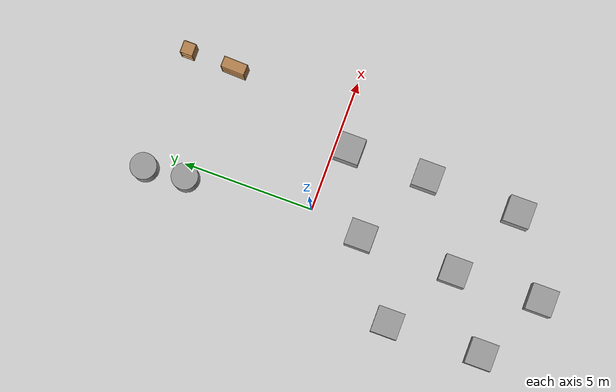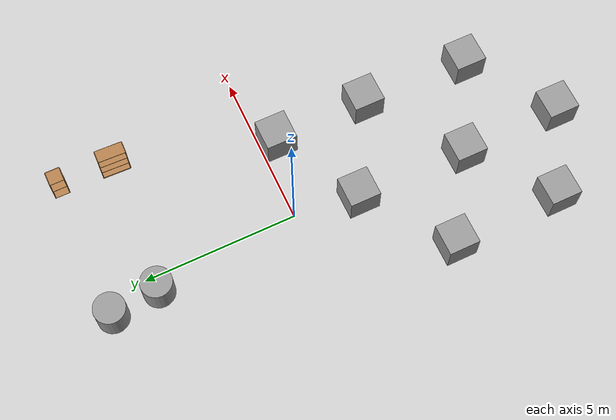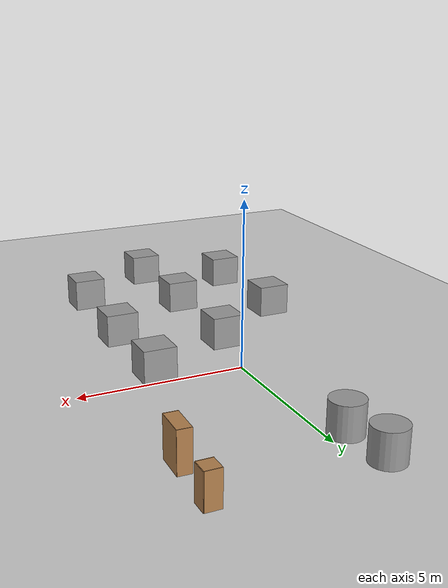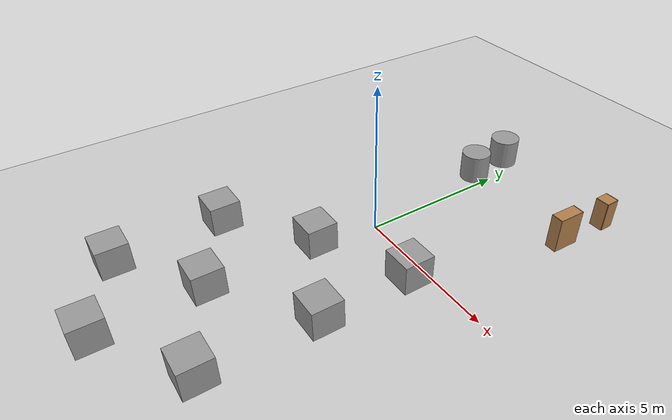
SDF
<sdf version="1.7">
 <world name="default">
  <model name="ground_plane">
   <static>1</static>
   <link name="link">
    <collision name="collision">
     <laser_retro>255</laser_retro>
     <geometry><plane><normal>0 0 1</normal><size>100 100</size></plane></geometry>
     <surface><friction><ode><mu>100</mu><mu2>50</mu2></ode></friction></surface>
    </collision>
    <visual name="visual">
     <cast_shadows>0</cast_shadows>
     <geometry><plane><normal>0 0 1</normal><size>100 100</size></plane></geometry>
     <material>
      <script><uri>file://media/materials/scripts/gazebo.material</uri><name>Gazebo/Grey</name></script>
     </material>
    </visual>
    <velocity_decay><linear>0</linear><angular>0</angular></velocity_decay>
   </link>
  </model>
  <light name="sun" type="directional">
   <pose>0 0 10 0 -0 0</pose>
   <diffuse>0.8 0.8 0.8 1</diffuse>
   <specular>0.2 0.2 0.2 1</specular>
   <attenuation>
    <range>1000</range>
    <constant>0.9</constant>
    <linear>0.01</linear>
    <quadratic>0.001</quadratic>
   </attenuation>
   <direction>-0.5 0.1 -0.9</direction>
   <spot><inner_angle>0</inner_angle><outer_angle>0</outer_angle><falloff>0</falloff></spot>
  </light>
  <physics type="ode">
   <max_step_size>0.001</max_step_size>
   <real_time_factor>1</real_time_factor>
   <real_time_update_rate>1000</real_time_update_rate>
  </physics>
  <scene><ambient>0.4 0.4 0.4 1</ambient><background>0.7 0.7 0.7 1</background><shadows>1</shadows></scene>
  <spherical_coordinates>
   <surface_model>EARTH_WGS84</surface_model>
   <latitude_deg>0</latitude_deg>
   <longitude_deg>0</longitude_deg>
   <elevation>0</elevation>
   <heading_deg>0</heading_deg>
  </spherical_coordinates>
  <gravity>0 0 -9.8</gravity>
  <magnetic_field>6e-06 2.3e-05 -4.2e-05</magnetic_field>
  <atmosphere type="adiabatic"/>
  <model name="unit_box">
   <pose>2.52633 -0.5477 0.5 0 -0 0</pose>
   <link name="link">
    <inertial>
     <mass>1</mass>
     <inertia>
      <ixx>0.166667</ixx>
      <ixy>0</ixy>
      <ixz>0</ixz>
      <iyy>0.166667</iyy>
      <iyz>0</iyz>
      <izz>0.166667</izz>
     </inertia>
    </inertial>
    <collision name="collision"><geometry><box><size>1 1 1</size></box></geometry></collision>
    <visual name="visual">
     <geometry><box><size>1 1 1</size></box></geometry>
     <material>
      <script><name>Gazebo/Grey</name><uri>file://media/materials/scripts/gazebo.material</uri></script>
     </material>
    </visual>
   </link>
  </model>
  <model name="unit_box_0">
   <pose>-0.319175 -2.0482 0.5 0 -0 0</pose>
   <link name="link">
    <inertial>
     <mass>1</mass>
     <inertia>
      <ixx>0.166667</ixx>
      <ixy>0</ixy>
      <ixz>0</ixz>
      <iyy>0.166667</iyy>
      <iyz>0</iyz>
      <izz>0.166667</izz>
     </inertia>
    </inertial>
    <collision name="collision"><geometry><box><size>1 1 1</size></box></geometry></collision>
    <visual name="visual">
     <geometry><box><size>1 1 1</size></box></geometry>
     <material>
      <script><name>Gazebo/Grey</name><uri>file://media/materials/scripts/gazebo.material</uri></script>
     </material>
    </visual>
   </link>
  </model>
  <model name="unit_box_1">
   <pose>-2.98064 -4.04433 0.5 0 -0 0</pose>
   <link name="link">
    <inertial>
     <mass>1</mass>
     <inertia>
      <ixx>0.166667</ixx>
      <ixy>0</ixy>
      <ixz>0</ixz>
      <iyy>0.166667</iyy>
      <iyz>0</iyz>
      <izz>0.166667</izz>
     </inertia>
    </inertial>
    <collision name="collision"><geometry><box><size>1 1 1</size></box></geometry></collision>
    <visual name="visual">
     <geometry><box><size>1 1 1</size></box></geometry>
     <material>
      <script><name>Gazebo/Grey</name><uri>file://media/materials/scripts/gazebo.material</uri></script>
     </material>
    </visual>
   </link>
  </model>
  <model name="unit_box_2">
   <pose>-0.375792 -5.71484 0.5 0 -0 0</pose>
   <link name="link">
    <inertial>
     <mass>1</mass>
     <inertia>
      <ixx>0.166667</ixx>
      <ixy>0</ixy>
      <ixz>0</ixz>
      <iyy>0.166667</iyy>
      <iyz>0</iyz>
      <izz>0.166667</izz>
     </inertia>
    </inertial>
    <collision name="collision"><geometry><box><size>1 1 1</size></box></geometry></collision>
    <visual name="visual">
     <geometry><box><size>1 1 1</size></box></geometry>
     <material>
      <script><name>Gazebo/Grey</name><uri>file://media/materials/scripts/gazebo.material</uri></script>
     </material>
    </visual>
   </link>
  </model>
  <model name="unit_box_3">
   <pose>-0.290861 -9.02755 0.5 0 -0 0</pose>
   <link name="link">
    <inertial>
     <mass>1</mass>
     <inertia>
      <ixx>0.166667</ixx>
      <ixy>0</ixy>
      <ixz>0</ixz>
      <iyy>0.166667</iyy>
      <iyz>0</iyz>
      <izz>0.166667</izz>
     </inertia>
    </inertial>
    <collision name="collision"><geometry><box><size>1 1 1</size></box></geometry></collision>
    <visual name="visual">
     <geometry><box><size>1 1 1</size></box></geometry>
     <material>
      <script><name>Gazebo/Grey</name><uri>file://media/materials/scripts/gazebo.material</uri></script>
     </material>
    </visual>
   </link>
  </model>
  <model name="unit_box_4">
   <pose>-2.88154 -7.62597 0.5 0 -0 0</pose>
   <link name="link">
    <inertial>
     <mass>1</mass>
     <inertia>
      <ixx>0.166667</ixx>
      <ixy>0</ixy>
      <ixz>0</ixz>
      <iyy>0.166667</iyy>
      <iyz>0</iyz>
      <izz>0.166667</izz>
     </inertia>
    </inertial>
    <collision name="collision"><geometry><box><size>1 1 1</size></box></geometry></collision>
    <visual name="visual">
     <geometry><box><size>1 1 1</size></box></geometry>
     <material>
      <script><name>Gazebo/Grey</name><uri>file://media/materials/scripts/gazebo.material</uri></script>
     </material>
    </visual>
   </link>
  </model>
  <model name="unit_box_5">
   <pose>2.55465 -3.6055 0.5 0 -0 0</pose>
   <link name="link">
    <inertial>
     <mass>1</mass>
     <inertia>
      <ixx>0.166667</ixx>
      <ixy>0</ixy>
      <ixz>0</ixz>
      <iyy>0.166667</iyy>
      <iyz>0</iyz>
      <izz>0.166667</izz>
     </inertia>
    </inertial>
    <collision name="collision"><geometry><box><size>1 1 1</size></box></geometry></collision>
    <visual name="visual">
     <geometry><box><size>1 1 1</size></box></geometry>
     <material>
      <script><name>Gazebo/Grey</name><uri>file://media/materials/scripts/gazebo.material</uri></script>
     </material>
    </visual>
   </link>
  </model>
  <model name="unit_box_6">
   <pose>2.45555 -7.18714 0.5 0 -0 0</pose>
   <link name="link">
    <inertial>
     <mass>1</mass>
     <inertia>
      <ixx>0.166667</ixx>
      <ixy>0</ixy>
      <ixz>0</ixz>
      <iyy>0.166667</iyy>
      <iyz>0</iyz>
      <izz>0.166667</izz>
     </inertia>
    </inertial>
    <collision name="collision"><geometry><box><size>1 1 1</size></box></geometry></collision>
    <visual name="visual">
     <geometry><box><size>1 1 1</size></box></geometry>
     <material>
      <script><name>Gazebo/Grey</name><uri>file://media/materials/scripts/gazebo.material</uri></script>
     </material>
    </visual>
   </link>
  </model>
  <model name="unit_cylinder">
   <pose>-0.673469 6.28661 0.5 0 -0 0</pose>
   <link name="link">
    <inertial>
     <mass>1</mass>
     <inertia><ixx>0.145833</ixx><ixy>0</ixy><ixz>0</ixz><iyy>0.145833</iyy><iyz>0</iyz><izz>0.125</izz></inertia>
    </inertial>
    <collision name="collision">
     <geometry><cylinder><radius>0.5</radius><length>1</length></cylinder></geometry>
    </collision>
    <visual name="visual">
     <geometry><cylinder><radius>0.5</radius><length>1</length></cylinder></geometry>
     <material>
      <script><name>Gazebo/Grey</name><uri>file://media/materials/scripts/gazebo.material</uri></script>
     </material>
    </visual>
   </link>
  </model>
  <model name="unit_cylinder_0">
   <pose>-0.51276 4.73629 0.5 0 -0 0</pose>
   <link name="link">
    <inertial>
     <mass>1</mass>
     <inertia><ixx>0.145833</ixx><ixy>0</ixy><ixz>0</ixz><iyy>0.145833</iyy><iyz>0</iyz><izz>0.125</izz></inertia>
    </inertial>
    <collision name="collision">
     <geometry><cylinder><radius>0.5</radius><length>1</length></cylinder></geometry>
    </collision>
    <visual name="visual">
     <geometry><cylinder><radius>0.5</radius><length>1</length></cylinder></geometry>
     <material>
      <script><name>Gazebo/Grey</name><uri>file://media/materials/scripts/gazebo.material</uri></script>
     </material>
    </visual>
   </link>
  </model>
  <model name="cabinet">
   <static>1</static>
   <link name="cabinet_bottom_plate">
    <inertial>
     <pose>0 0 -1 0 -0 0</pose>
     <inertia><ixx>2.05</ixx><ixy>0</ixy><ixz>0</ixz><iyy>2.05</iyy><iyz>0</iyz><izz>2.05</izz></inertia>
     <mass>25</mass>
    </inertial>
    <collision name="cabinet_bottom_plate_geom">
     <pose>0 0 0.01 0 -0 0</pose>
     <geometry><box><size>0.45 0.45 0.02</size></box></geometry>
    </collision>
    <visual name="cabinet_bottom_plate_geom_visual">
     <pose>0 0 0.01 0 -0 0</pose>
     <geometry><box><size>0.45 0.45 0.02</size></box></geometry>
     <material>
      <script><uri>file://media/materials/scripts/gazebo.material</uri><name>Gazebo/Wood</name></script>
     </material>
    </visual>
    <collision name="cabinet_bottom_plate_geom_cabinet_back_plate">
     <pose>0.235 0 0.51 0 -0 0</pose>
     <geometry><box><size>0.02 0.45 1.02</size></box></geometry>
    </collision>
    <visual name="cabinet_bottom_plate_geom_cabinet_back_plate_visual">
     <pose>0.235 0 0.51 0 -0 0</pose>
     <geometry><box><size>0.02 0.45 1.02</size></box></geometry>
     <material>
      <script><uri>file://media/materials/scripts/gazebo.material</uri><name>Gazebo/Wood</name></script>
     </material>
    </visual>
    <collision name="cabinet_bottom_plate_geom_cabinet_left_plate">
     <pose>0 0.235 0.51 0 -0 0</pose>
     <geometry><box><size>0.45 0.02 1.02</size></box></geometry>
    </collision>
    <visual name="cabinet_bottom_plate_geom_cabinet_left_plate_visual">
     <pose>0 0.235 0.51 0 -0 0</pose>
     <geometry><box><size>0.45 0.02 1.02</size></box></geometry>
     <material>
      <script><uri>file://media/materials/scripts/gazebo.material</uri><name>Gazebo/Wood</name></script>
     </material>
    </visual>
    <collision name="cabinet_bottom_plate_geom_cabinet_middle_plate">
     <pose>0 0 0.51 0 -0 0</pose>
     <geometry><box><size>0.45 0.45 0.02</size></box></geometry>
    </collision>
    <visual name="cabinet_bottom_plate_geom_cabinet_middle_plate_visual">
     <pose>0 0 0.51 0 -0 0</pose>
     <geometry><box><size>0.45 0.45 0.02</size></box></geometry>
     <material>
      <script><uri>file://media/materials/scripts/gazebo.material</uri><name>Gazebo/Wood</name></script>
     </material>
    </visual>
    <collision name="cabinet_bottom_plate_geom_cabinet_right_plate">
     <pose>0 -0.235 0.51 0 -0 0</pose>
     <geometry><box><size>0.45 0.02 1.02</size></box></geometry>
    </collision>
    <visual name="cabinet_bottom_plate_geom_cabinet_right_plate_visual">
     <pose>0 -0.235 0.51 0 -0 0</pose>
     <geometry><box><size>0.45 0.02 1.02</size></box></geometry>
     <material>
      <script><uri>file://media/materials/scripts/gazebo.material</uri><name>Gazebo/Wood</name></script>
     </material>
    </visual>
    <collision name="cabinet_bottom_plate_geom_cabinet_top_plate">
     <pose>0 0 1.01 0 -0 0</pose>
     <geometry><box><size>0.45 0.45 0.02</size></box></geometry>
    </collision>
    <visual name="cabinet_bottom_plate_geom_cabinet_top_plate_visual">
     <pose>0 0 1.01 0 -0 0</pose>
     <geometry><box><size>0.45 0.45 0.02</size></box></geometry>
     <material>
      <script><uri>file://media/materials/scripts/gazebo.material</uri><name>Gazebo/Wood</name></script>
     </material>
    </visual>
   </link>
   <pose>3.95072 6.26186 0 0 -0 0</pose>
  </model>
  <model name="bookshelf">
   <static>1</static>
   <link name="link">
    <inertial><mass>1</mass></inertial>
    <collision name="back">
     <pose>0 0.005 0.6 0 -0 0</pose>
     <geometry><box><size>0.9 0.01 1.2</size></box></geometry>
    </collision>
    <visual name="visual1">
     <pose>0 0.005 0.6 0 -0 0</pose>
     <geometry><box><size>0.9 0.01 1.2</size></box></geometry>
     <material>
      <script><uri>file://media/materials/scripts/gazebo.material</uri><name>Gazebo/Wood</name></script>
     </material>
    </visual>
    <collision name="left_side">
     <pose>0.45 -0.195 0.6 0 -0 0</pose>
     <geometry><box><size>0.02 0.4 1.2</size></box></geometry>
    </collision>
    <visual name="visual2">
     <pose>0.45 -0.195 0.6 0 -0 0</pose>
     <geometry><box><size>0.02 0.4 1.2</size></box></geometry>
     <material>
      <script><uri>file://media/materials/scripts/gazebo.material</uri><name>Gazebo/Wood</name></script>
     </material>
    </visual>
    <collision name="right_side">
     <pose>-0.45 -0.195 0.6 0 -0 0</pose>
     <geometry><box><size>0.02 0.4 1.2</size></box></geometry>
    </collision>
    <visual name="visual3">
     <pose>-0.45 -0.195 0.6 0 -0 0</pose>
     <geometry><box><size>0.02 0.4 1.2</size></box></geometry>
     <material>
      <script><uri>file://media/materials/scripts/gazebo.material</uri><name>Gazebo/Wood</name></script>
     </material>
    </visual>
    <collision name="bottom">
     <pose>0 -0.195 0.03 0 -0 0</pose>
     <geometry><box><size>0.88 0.4 0.06</size></box></geometry>
    </collision>
    <visual name="visual4">
     <pose>0 -0.195 0.03 0 -0 0</pose>
     <geometry><box><size>0.88 0.4 0.06</size></box></geometry>
     <material>
      <script><uri>file://media/materials/scripts/gazebo.material</uri><name>Gazebo/Wood</name></script>
     </material>
    </visual>
    <collision name="top">
     <pose>0 -0.195 1.19 0 -0 0</pose>
     <geometry><box><size>0.88 0.4 0.02</size></box></geometry>
    </collision>
    <visual name="visual5">
     <pose>0 -0.195 1.19 0 -0 0</pose>
     <geometry><box><size>0.88 0.4 0.02</size></box></geometry>
     <material>
      <script><uri>file://media/materials/scripts/gazebo.material</uri><name>Gazebo/Wood</name></script>
     </material>
    </visual>
    <collision name="low_shelf">
     <pose>0 -0.195 0.43 0 -0 0</pose>
     <geometry><box><size>0.88 0.4 0.02</size></box></geometry>
    </collision>
    <visual name="visual6">
     <pose>0 -0.195 0.43 0 -0 0</pose>
     <geometry><box><size>0.88 0.4 0.02</size></box></geometry>
     <material>
      <script><uri>file://media/materials/scripts/gazebo.material</uri><name>Gazebo/Wood</name></script>
     </material>
    </visual>
    <collision name="high_shelf">
     <pose>0 -0.195 0.8 0 -0 0</pose>
     <geometry><box><size>0.88 0.4 0.02</size></box></geometry>
    </collision>
    <visual name="visual7">
     <pose>0 -0.195 0.8 0 -0 0</pose>
     <geometry><box><size>0.88 0.4 0.02</size></box></geometry>
     <material>
      <script><uri>file://media/materials/scripts/gazebo.material</uri><name>Gazebo/Wood</name></script>
     </material>
    </visual>
   </link>
   <pose>4.1 4.42518 0 0 0 -1.605</pose>
  </model>
 </world>
</sdf>
